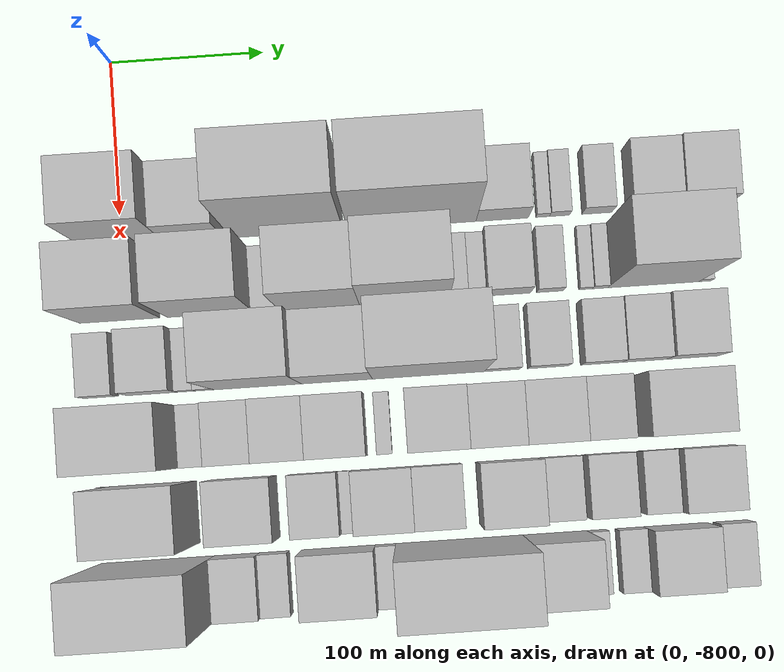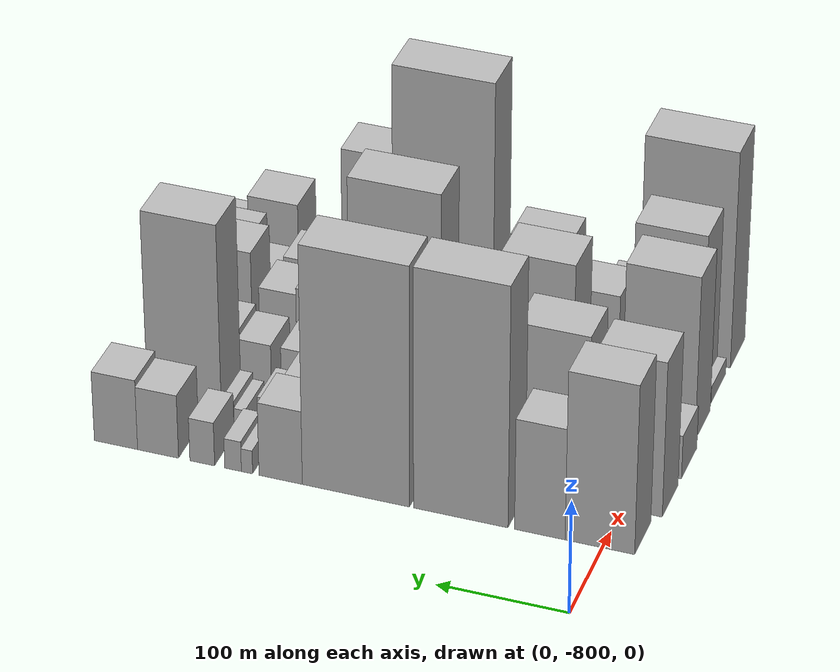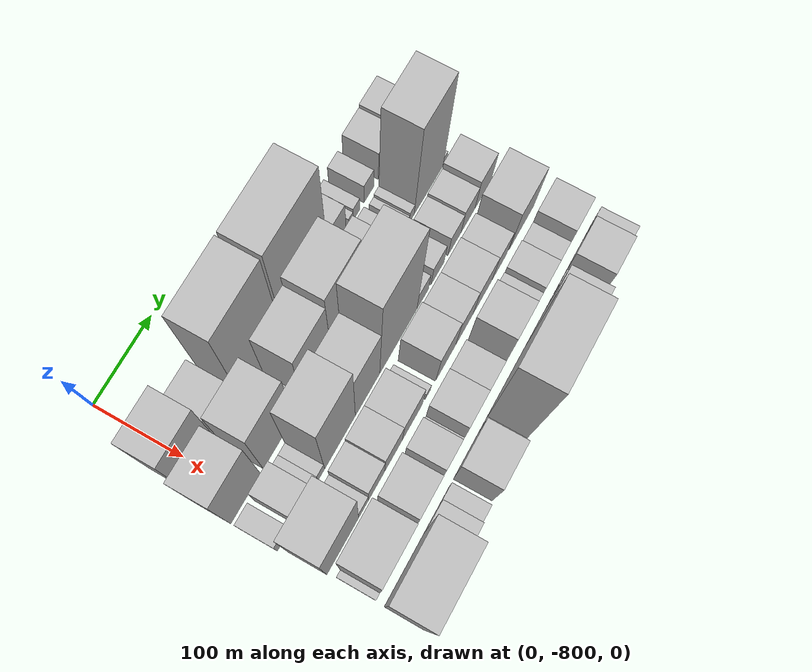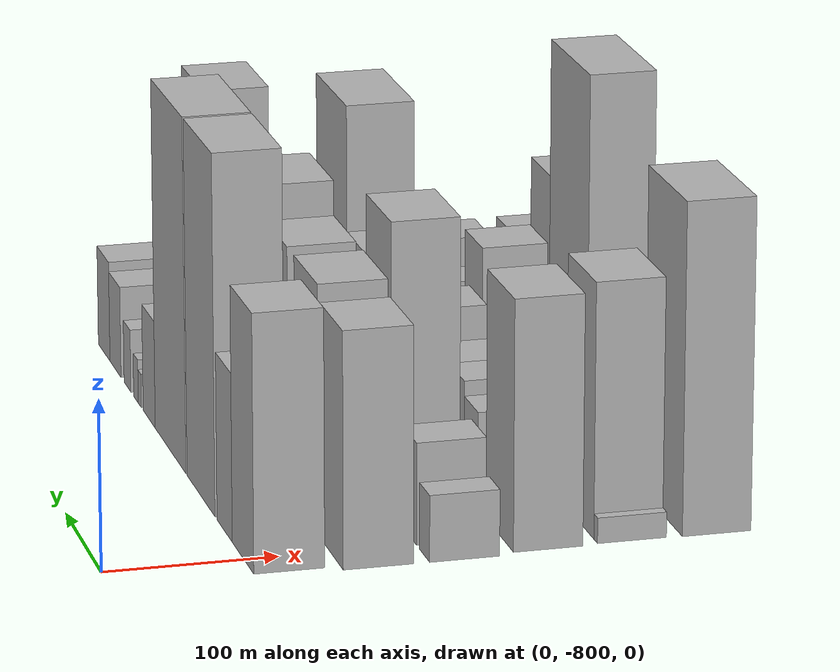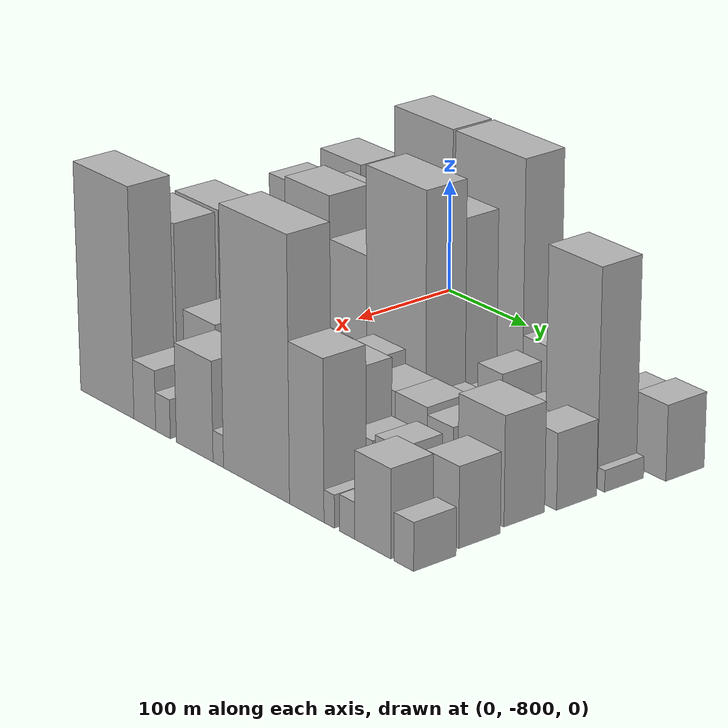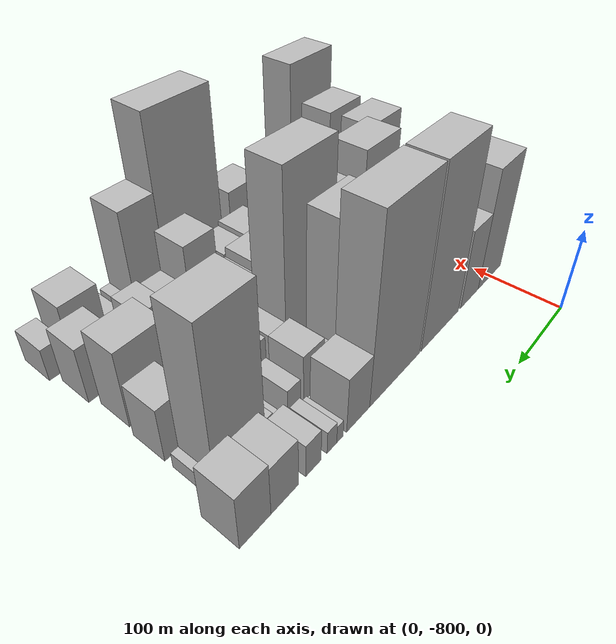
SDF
<sdf version="1.6">
 <world name="default">
  <model name="building_1">
   <static>1</static>
   <pose>100.0000 -797.6599 0 0.000000 0.000000 0.000000</pose>
   <link name="link">
    <pose>0 0 75.00 0 0 0</pose>
    <collision name="collision"><geometry><box><size>40.0000 52.6803 150.0000</size></box></geometry></collision>
    <visual name="visual">
     <cast_shadows>0</cast_shadows>
     <geometry><box><size>40.0000 52.6803 150.0000</size></box></geometry>
     <material>
      <script>
       <uri>model://HANNAS_wall/materials/scripts</uri>
       <uri>model://HANNAS_wall/materials/textures</uri>
       <name>vrc/HANNAS_wall</name>
      </script>
     </material>
    </visual>
   </link>
  </model>
  <model name="building_2">
   <static>1</static>
   <pose>100.0000 -752.0866 0 0.000000 0.000000 0.000000</pose>
   <link name="link">
    <pose>0 0 49.50 0 0 0</pose>
    <collision name="collision"><geometry><box><size>40.0000 38.4662 99.0000</size></box></geometry></collision>
    <visual name="visual">
     <cast_shadows>0</cast_shadows>
     <geometry><box><size>40.0000 38.4662 99.0000</size></box></geometry>
     <material>
      <script>
       <uri>model://HANNAS_wall/materials/scripts</uri>
       <uri>model://HANNAS_wall/materials/textures</uri>
       <name>vrc/HANNAS_wall</name>
      </script>
     </material>
    </visual>
   </link>
  </model>
  <model name="building_3">
   <static>1</static>
   <pose>100.0000 -691.5177 0 0.000000 0.000000 0.000000</pose>
   <link name="link">
    <pose>0 0 106.50 0 0 0</pose>
    <collision name="collision"><geometry><box><size>40.0000 72.6717 213.0000</size></box></geometry></collision>
    <visual name="visual">
     <cast_shadows>0</cast_shadows>
     <geometry><box><size>40.0000 72.6717 213.0000</size></box></geometry>
     <material>
      <script>
       <uri>model://HANNAS_wall/materials/scripts</uri>
       <uri>model://HANNAS_wall/materials/textures</uri>
       <name>vrc/HANNAS_wall</name>
      </script>
     </material>
    </visual>
   </link>
  </model>
  <model name="building_4">
   <static>1</static>
   <pose>100.0000 -610.3841 0 0.000000 0.000000 0.000000</pose>
   <link name="link">
    <pose>0 0 106.50 0 0 0</pose>
    <collision name="collision"><geometry><box><size>40.0000 83.5954 213.0000</size></box></geometry></collision>
    <visual name="visual">
     <cast_shadows>0</cast_shadows>
     <geometry><box><size>40.0000 83.5954 213.0000</size></box></geometry>
     <material>
      <script>
       <uri>model://HANNAS_wall/materials/scripts</uri>
       <uri>model://HANNAS_wall/materials/textures</uri>
       <name>vrc/HANNAS_wall</name>
      </script>
     </material>
    </visual>
   </link>
  </model>
  <model name="building_5">
   <static>1</static>
   <pose>100.0000 -551.5495 0 0.000000 0.000000 0.000000</pose>
   <link name="link">
    <pose>0 0 33.00 0 0 0</pose>
    <collision name="collision"><geometry><box><size>40.0000 34.0738 66.0000</size></box></geometry></collision>
    <visual name="visual">
     <cast_shadows>0</cast_shadows>
     <geometry><box><size>40.0000 34.0738 66.0000</size></box></geometry>
     <material>
      <script>
       <uri>model://HANNAS_wall/materials/scripts</uri>
       <uri>model://HANNAS_wall/materials/textures</uri>
       <name>vrc/HANNAS_wall</name>
      </script>
     </material>
    </visual>
   </link>
  </model>
  <model name="building_6">
   <static>1</static>
   <pose>100.0000 -525.0571 0 0.000000 0.000000 0.000000</pose>
   <link name="link">
    <pose>0 0 10.50 0 0 0</pose>
    <collision name="collision"><geometry><box><size>40.0000 8.9111 21.0000</size></box></geometry></collision>
    <visual name="visual">
     <cast_shadows>0</cast_shadows>
     <geometry><box><size>40.0000 8.9111 21.0000</size></box></geometry>
     <material>
      <script>
       <uri>model://HANNAS_wall/materials/scripts</uri>
       <uri>model://HANNAS_wall/materials/textures</uri>
       <name>vrc/HANNAS_wall</name>
      </script>
     </material>
    </visual>
   </link>
  </model>
  <model name="building_7">
   <static>1</static>
   <pose>100.0000 -514.0190 0 0.000000 0.000000 0.000000</pose>
   <link name="link">
    <pose>0 0 13.50 0 0 0</pose>
    <collision name="collision"><geometry><box><size>40.0000 13.1650 27.0000</size></box></geometry></collision>
    <visual name="visual">
     <cast_shadows>0</cast_shadows>
     <geometry><box><size>40.0000 13.1650 27.0000</size></box></geometry>
     <material>
      <script>
       <uri>model://HANNAS_wall/materials/scripts</uri>
       <uri>model://HANNAS_wall/materials/textures</uri>
       <name>vrc/HANNAS_wall</name>
      </script>
     </material>
    </visual>
   </link>
  </model>
  <model name="building_8">
   <static>1</static>
   <pose>100.0000 -489.5974 0 0.000000 0.000000 0.000000</pose>
   <link name="link">
    <pose>0 0 19.50 0 0 0</pose>
    <collision name="collision"><geometry><box><size>40.0000 19.6783 39.0000</size></box></geometry></collision>
    <visual name="visual">
     <cast_shadows>0</cast_shadows>
     <geometry><box><size>40.0000 19.6783 39.0000</size></box></geometry>
     <material>
      <script>
       <uri>model://HANNAS_wall/materials/scripts</uri>
       <uri>model://HANNAS_wall/materials/textures</uri>
       <name>vrc/HANNAS_wall</name>
      </script>
     </material>
    </visual>
   </link>
  </model>
  <model name="building_9">
   <static>1</static>
   <pose>100.0000 -454.3965 0 0.000000 0.000000 0.000000</pose>
   <link name="link">
    <pose>0 0 28.50 0 0 0</pose>
    <collision name="collision"><geometry><box><size>40.0000 32.7235 57.0000</size></box></geometry></collision>
    <visual name="visual">
     <cast_shadows>0</cast_shadows>
     <geometry><box><size>40.0000 32.7235 57.0000</size></box></geometry>
     <material>
      <script>
       <uri>model://HANNAS_wall/materials/scripts</uri>
       <uri>model://HANNAS_wall/materials/textures</uri>
       <name>vrc/HANNAS_wall</name>
      </script>
     </material>
    </visual>
   </link>
  </model>
  <model name="building_10">
   <static>1</static>
   <pose>100.0000 -420.7034 0 0.000000 0.000000 0.000000</pose>
   <link name="link">
    <pose>0 0 31.50 0 0 0</pose>
    <collision name="collision"><geometry><box><size>40.0000 34.6626 63.0000</size></box></geometry></collision>
    <visual name="visual">
     <cast_shadows>0</cast_shadows>
     <geometry><box><size>40.0000 34.6626 63.0000</size></box></geometry>
     <material>
      <script>
       <uri>model://HANNAS_wall/materials/scripts</uri>
       <uri>model://HANNAS_wall/materials/textures</uri>
       <name>vrc/HANNAS_wall</name>
      </script>
     </material>
    </visual>
   </link>
  </model>
  <model name="building_46">
   <static>1</static>
   <pose>149.0000 -803.9042 0 0.000000 0.000000 0.000000</pose>
   <link name="link">
    <pose>0 0 69.00 0 0 0</pose>
    <collision name="collision"><geometry><box><size>40.0000 52.1916 138.0000</size></box></geometry></collision>
    <visual name="visual">
     <cast_shadows>0</cast_shadows>
     <geometry><box><size>40.0000 52.1916 138.0000</size></box></geometry>
     <material>
      <script>
       <uri>model://HANNAS_wall/materials/scripts</uri>
       <uri>model://HANNAS_wall/materials/textures</uri>
       <name>vrc/HANNAS_wall</name>
      </script>
     </material>
    </visual>
   </link>
  </model>
  <model name="building_47">
   <static>1</static>
   <pose>149.0000 -744.8773 0 0.000000 0.000000 0.000000</pose>
   <link name="link">
    <pose>0 0 73.50 0 0 0</pose>
    <collision name="collision"><geometry><box><size>40.0000 55.8622 147.0000</size></box></geometry></collision>
    <visual name="visual">
     <cast_shadows>0</cast_shadows>
     <geometry><box><size>40.0000 55.8622 147.0000</size></box></geometry>
     <material>
      <script>
       <uri>model://HANNAS_wall/materials/scripts</uri>
       <uri>model://HANNAS_wall/materials/textures</uri>
       <name>vrc/HANNAS_wall</name>
      </script>
     </material>
    </visual>
   </link>
  </model>
  <model name="building_48">
   <static>1</static>
   <pose>149.0000 -708.6220 0 0.000000 0.000000 0.000000</pose>
   <link name="link">
    <pose>0 0 15.00 0 0 0</pose>
    <collision name="collision"><geometry><box><size>40.0000 16.6484 30.0000</size></box></geometry></collision>
    <visual name="visual">
     <cast_shadows>0</cast_shadows>
     <geometry><box><size>40.0000 16.6484 30.0000</size></box></geometry>
     <material>
      <script>
       <uri>model://HANNAS_wall/materials/scripts</uri>
       <uri>model://HANNAS_wall/materials/textures</uri>
       <name>vrc/HANNAS_wall</name>
      </script>
     </material>
    </visual>
   </link>
  </model>
  <model name="building_49">
   <static>1</static>
   <pose>149.0000 -674.1054 0 0.000000 0.000000 0.000000</pose>
   <link name="link">
    <pose>0 0 73.50 0 0 0</pose>
    <collision name="collision"><geometry><box><size>40.0000 52.3848 147.0000</size></box></geometry></collision>
    <visual name="visual">
     <cast_shadows>0</cast_shadows>
     <geometry><box><size>40.0000 52.3848 147.0000</size></box></geometry>
     <material>
      <script>
       <uri>model://HANNAS_wall/materials/scripts</uri>
       <uri>model://HANNAS_wall/materials/textures</uri>
       <name>vrc/HANNAS_wall</name>
      </script>
     </material>
    </visual>
   </link>
  </model>
  <model name="building_50">
   <static>1</static>
   <pose>149.0000 -618.6247 0 0.000000 0.000000 0.000000</pose>
   <link name="link">
    <pose>0 0 84.00 0 0 0</pose>
    <collision name="collision"><geometry><box><size>40.0000 58.5766 168.0000</size></box></geometry></collision>
    <visual name="visual">
     <cast_shadows>0</cast_shadows>
     <geometry><box><size>40.0000 58.5766 168.0000</size></box></geometry>
     <material>
      <script>
       <uri>model://HANNAS_wall/materials/scripts</uri>
       <uri>model://HANNAS_wall/materials/textures</uri>
       <name>vrc/HANNAS_wall</name>
      </script>
     </material>
    </visual>
   </link>
  </model>
  <model name="building_51">
   <static>1</static>
   <pose>149.0000 -583.2388 0 0.000000 0.000000 0.000000</pose>
   <link name="link">
    <pose>0 0 13.50 0 0 0</pose>
    <collision name="collision"><geometry><box><size>40.0000 12.1953 27.0000</size></box></geometry></collision>
    <visual name="visual">
     <cast_shadows>0</cast_shadows>
     <geometry><box><size>40.0000 12.1953 27.0000</size></box></geometry>
     <material>
      <script>
       <uri>model://HANNAS_wall/materials/scripts</uri>
       <uri>model://HANNAS_wall/materials/textures</uri>
       <name>vrc/HANNAS_wall</name>
      </script>
     </material>
    </visual>
   </link>
  </model>
  <model name="building_52">
   <static>1</static>
   <pose>149.0000 -571.4134 0 0.000000 0.000000 0.000000</pose>
   <link name="link">
    <pose>0 0 12.00 0 0 0</pose>
    <collision name="collision"><geometry><box><size>40.0000 11.4554 24.0000</size></box></geometry></collision>
    <visual name="visual">
     <cast_shadows>0</cast_shadows>
     <geometry><box><size>40.0000 11.4554 24.0000</size></box></geometry>
     <material>
      <script>
       <uri>model://HANNAS_wall/materials/scripts</uri>
       <uri>model://HANNAS_wall/materials/textures</uri>
       <name>vrc/HANNAS_wall</name>
      </script>
     </material>
    </visual>
   </link>
  </model>
  <model name="building_53">
   <static>1</static>
   <pose>149.0000 -551.0473 0 0.000000 0.000000 0.000000</pose>
   <link name="link">
    <pose>0 0 28.50 0 0 0</pose>
    <collision name="collision"><geometry><box><size>40.0000 29.2768 57.0000</size></box></geometry></collision>
    <visual name="visual">
     <cast_shadows>0</cast_shadows>
     <geometry><box><size>40.0000 29.2768 57.0000</size></box></geometry>
     <material>
      <script>
       <uri>model://HANNAS_wall/materials/scripts</uri>
       <uri>model://HANNAS_wall/materials/textures</uri>
       <name>vrc/HANNAS_wall</name>
      </script>
     </material>
    </visual>
   </link>
  </model>
  <model name="building_54">
   <static>1</static>
   <pose>149.0000 -523.7265 0 0.000000 0.000000 0.000000</pose>
   <link name="link">
    <pose>0 0 16.50 0 0 0</pose>
    <collision name="collision"><geometry><box><size>40.0000 17.3649 33.0000</size></box></geometry></collision>
    <visual name="visual">
     <cast_shadows>0</cast_shadows>
     <geometry><box><size>40.0000 17.3649 33.0000</size></box></geometry>
     <material>
      <script>
       <uri>model://HANNAS_wall/materials/scripts</uri>
       <uri>model://HANNAS_wall/materials/textures</uri>
       <name>vrc/HANNAS_wall</name>
      </script>
     </material>
    </visual>
   </link>
  </model>
  <model name="building_55">
   <static>1</static>
   <pose>149.0000 -500.5472 0 0.000000 0.000000 0.000000</pose>
   <link name="link">
    <pose>0 0 9.00 0 0 0</pose>
    <collision name="collision"><geometry><box><size>40.0000 8.9937 18.0000</size></box></geometry></collision>
    <visual name="visual">
     <cast_shadows>0</cast_shadows>
     <geometry><box><size>40.0000 8.9937 18.0000</size></box></geometry>
     <material>
      <script>
       <uri>model://HANNAS_wall/materials/scripts</uri>
       <uri>model://HANNAS_wall/materials/textures</uri>
       <name>vrc/HANNAS_wall</name>
      </script>
     </material>
    </visual>
   </link>
  </model>
  <model name="building_56">
   <static>1</static>
   <pose>149.0000 -491.0461 0 0.000000 0.000000 0.000000</pose>
   <link name="link">
    <pose>0 0 12.00 0 0 0</pose>
    <collision name="collision"><geometry><box><size>40.0000 10.0085 24.0000</size></box></geometry></collision>
    <visual name="visual">
     <cast_shadows>0</cast_shadows>
     <geometry><box><size>40.0000 10.0085 24.0000</size></box></geometry>
     <material>
      <script>
       <uri>model://HANNAS_wall/materials/scripts</uri>
       <uri>model://HANNAS_wall/materials/textures</uri>
       <name>vrc/HANNAS_wall</name>
      </script>
     </material>
    </visual>
   </link>
  </model>
  <model name="building_57">
   <static>1</static>
   <pose>149.0000 -456.3584 0 0.000000 0.000000 0.000000</pose>
   <link name="link">
    <pose>0 0 90.00 0 0 0</pose>
    <collision name="collision"><geometry><box><size>40.0000 59.3669 180.0000</size></box></geometry></collision>
    <visual name="visual">
     <cast_shadows>0</cast_shadows>
     <geometry><box><size>40.0000 59.3669 180.0000</size></box></geometry>
     <material>
      <script>
       <uri>model://HANNAS_wall/materials/scripts</uri>
       <uri>model://HANNAS_wall/materials/textures</uri>
       <name>vrc/HANNAS_wall</name>
      </script>
     </material>
    </visual>
   </link>
  </model>
  <model name="building_58">
   <static>1</static>
   <pose>149.0000 -422.5458 0 0.000000 0.000000 0.000000</pose>
   <link name="link">
    <pose>0 0 9.00 0 0 0</pose>
    <collision name="collision"><geometry><box><size>40.0000 8.2582 18.0000</size></box></geometry></collision>
    <visual name="visual">
     <cast_shadows>0</cast_shadows>
     <geometry><box><size>40.0000 8.2582 18.0000</size></box></geometry>
     <material>
      <script>
       <uri>model://HANNAS_wall/materials/scripts</uri>
       <uri>model://HANNAS_wall/materials/textures</uri>
       <name>vrc/HANNAS_wall</name>
      </script>
     </material>
    </visual>
   </link>
  </model>
  <model name="building_96">
   <static>1</static>
   <pose>198.0000 -818.8767 0 0.000000 0.000000 0.000000</pose>
   <link name="link">
    <pose>0 0 19.50 0 0 0</pose>
    <collision name="collision"><geometry><box><size>40.0000 22.2465 39.0000</size></box></geometry></collision>
    <visual name="visual">
     <cast_shadows>0</cast_shadows>
     <geometry><box><size>40.0000 22.2465 39.0000</size></box></geometry>
     <material>
      <script>
       <uri>model://HANNAS_wall/materials/scripts</uri>
       <uri>model://HANNAS_wall/materials/textures</uri>
       <name>vrc/HANNAS_wall</name>
      </script>
     </material>
    </visual>
   </link>
  </model>
  <model name="building_97">
   <static>1</static>
   <pose>198.0000 -785.5520 0 0.000000 0.000000 0.000000</pose>
   <link name="link">
    <pose>0 0 30.00 0 0 0</pose>
    <collision name="collision"><geometry><box><size>40.0000 32.4029 60.0000</size></box></geometry></collision>
    <visual name="visual">
     <cast_shadows>0</cast_shadows>
     <geometry><box><size>40.0000 32.4029 60.0000</size></box></geometry>
     <material>
      <script>
       <uri>model://HANNAS_wall/materials/scripts</uri>
       <uri>model://HANNAS_wall/materials/textures</uri>
       <name>vrc/HANNAS_wall</name>
      </script>
     </material>
    </visual>
   </link>
  </model>
  <model name="building_98">
   <static>1</static>
   <pose>198.0000 -763.4886 0 0.000000 0.000000 0.000000</pose>
   <link name="link">
    <pose>0 0 13.50 0 0 0</pose>
    <collision name="collision"><geometry><box><size>40.0000 11.7238 27.0000</size></box></geometry></collision>
    <visual name="visual">
     <cast_shadows>0</cast_shadows>
     <geometry><box><size>40.0000 11.7238 27.0000</size></box></geometry>
     <material>
      <script>
       <uri>model://HANNAS_wall/materials/scripts</uri>
       <uri>model://HANNAS_wall/materials/textures</uri>
       <name>vrc/HANNAS_wall</name>
      </script>
     </material>
    </visual>
   </link>
  </model>
  <model name="building_99">
   <static>1</static>
   <pose>198.0000 -751.4270 0 0.000000 0.000000 0.000000</pose>
   <link name="link">
    <pose>0 0 13.50 0 0 0</pose>
    <collision name="collision"><geometry><box><size>40.0000 12.3993 27.0000</size></box></geometry></collision>
    <visual name="visual">
     <cast_shadows>0</cast_shadows>
     <geometry><box><size>40.0000 12.3993 27.0000</size></box></geometry>
     <material>
      <script>
       <uri>model://HANNAS_wall/materials/scripts</uri>
       <uri>model://HANNAS_wall/materials/textures</uri>
       <name>vrc/HANNAS_wall</name>
      </script>
     </material>
    </visual>
   </link>
  </model>
  <model name="building_100">
   <static>1</static>
   <pose>198.0000 -716.9110 0 0.000000 0.000000 0.000000</pose>
   <link name="link">
    <pose>0 0 85.50 0 0 0</pose>
    <collision name="collision"><geometry><box><size>40.0000 56.6328 171.0000</size></box></geometry></collision>
    <visual name="visual">
     <cast_shadows>0</cast_shadows>
     <geometry><box><size>40.0000 56.6328 171.0000</size></box></geometry>
     <material>
      <script>
       <uri>model://HANNAS_wall/materials/scripts</uri>
       <uri>model://HANNAS_wall/materials/textures</uri>
       <name>vrc/HANNAS_wall</name>
      </script>
     </material>
    </visual>
   </link>
  </model>
  <model name="building_101">
   <static>1</static>
   <pose>198.0000 -665.5616 0 0.000000 0.000000 0.000000</pose>
   <link name="link">
    <pose>0 0 67.50 0 0 0</pose>
    <collision name="collision"><geometry><box><size>40.0000 46.0659 135.0000</size></box></geometry></collision>
    <visual name="visual">
     <cast_shadows>0</cast_shadows>
     <geometry><box><size>40.0000 46.0659 135.0000</size></box></geometry>
     <material>
      <script>
       <uri>model://HANNAS_wall/materials/scripts</uri>
       <uri>model://HANNAS_wall/materials/textures</uri>
       <name>vrc/HANNAS_wall</name>
      </script>
     </material>
    </visual>
   </link>
  </model>
  <model name="building_102">
   <static>1</static>
   <pose>198.0000 -606.2586 0 0.000000 0.000000 0.000000</pose>
   <link name="link">
    <pose>0 0 105.00 0 0 0</pose>
    <collision name="collision"><geometry><box><size>40.0000 72.5401 210.0000</size></box></geometry></collision>
    <visual name="visual">
     <cast_shadows>0</cast_shadows>
     <geometry><box><size>40.0000 72.5401 210.0000</size></box></geometry>
     <material>
      <script>
       <uri>model://HANNAS_wall/materials/scripts</uri>
       <uri>model://HANNAS_wall/materials/textures</uri>
       <name>vrc/HANNAS_wall</name>
      </script>
     </material>
    </visual>
   </link>
  </model>
  <model name="building_103">
   <static>1</static>
   <pose>198.0000 -558.4354 0 0.000000 0.000000 0.000000</pose>
   <link name="link">
    <pose>0 0 21.00 0 0 0</pose>
    <collision name="collision"><geometry><box><size>40.0000 23.1064 42.0000</size></box></geometry></collision>
    <visual name="visual">
     <cast_shadows>0</cast_shadows>
     <geometry><box><size>40.0000 23.1064 42.0000</size></box></geometry>
     <material>
      <script>
       <uri>model://HANNAS_wall/materials/scripts</uri>
       <uri>model://HANNAS_wall/materials/textures</uri>
       <name>vrc/HANNAS_wall</name>
      </script>
     </material>
    </visual>
   </link>
  </model>
  <model name="building_104">
   <static>1</static>
   <pose>198.0000 -528.6116 0 0.000000 0.000000 0.000000</pose>
   <link name="link">
    <pose>0 0 22.50 0 0 0</pose>
    <collision name="collision"><geometry><box><size>40.0000 26.5411 45.0000</size></box></geometry></collision>
    <visual name="visual">
     <cast_shadows>0</cast_shadows>
     <geometry><box><size>40.0000 26.5411 45.0000</size></box></geometry>
     <material>
      <script>
       <uri>model://HANNAS_wall/materials/scripts</uri>
       <uri>model://HANNAS_wall/materials/textures</uri>
       <name>vrc/HANNAS_wall</name>
      </script>
     </material>
    </visual>
   </link>
  </model>
  <model name="building_105">
   <static>1</static>
   <pose>198.0000 -493.9260 0 0.000000 0.000000 0.000000</pose>
   <link name="link">
    <pose>0 0 22.50 0 0 0</pose>
    <collision name="collision"><geometry><box><size>40.0000 26.8301 45.0000</size></box></geometry></collision>
    <visual name="visual">
     <cast_shadows>0</cast_shadows>
     <geometry><box><size>40.0000 26.8301 45.0000</size></box></geometry>
     <material>
      <script>
       <uri>model://HANNAS_wall/materials/scripts</uri>
       <uri>model://HANNAS_wall/materials/textures</uri>
       <name>vrc/HANNAS_wall</name>
      </script>
     </material>
    </visual>
   </link>
  </model>
  <model name="building_106">
   <static>1</static>
   <pose>198.0000 -466.1054 0 0.000000 0.000000 0.000000</pose>
   <link name="link">
    <pose>0 0 25.50 0 0 0</pose>
    <collision name="collision"><geometry><box><size>40.0000 28.8110 51.0000</size></box></geometry></collision>
    <visual name="visual">
     <cast_shadows>0</cast_shadows>
     <geometry><box><size>40.0000 28.8110 51.0000</size></box></geometry>
     <material>
      <script>
       <uri>model://HANNAS_wall/materials/scripts</uri>
       <uri>model://HANNAS_wall/materials/textures</uri>
       <name>vrc/HANNAS_wall</name>
      </script>
     </material>
    </visual>
   </link>
  </model>
  <model name="building_107">
   <static>1</static>
   <pose>198.0000 -434.6857 0 0.000000 0.000000 0.000000</pose>
   <link name="link">
    <pose>0 0 31.50 0 0 0</pose>
    <collision name="collision"><geometry><box><size>40.0000 34.0284 63.0000</size></box></geometry></collision>
    <visual name="visual">
     <cast_shadows>0</cast_shadows>
     <geometry><box><size>40.0000 34.0284 63.0000</size></box></geometry>
     <material>
      <script>
       <uri>model://HANNAS_wall/materials/scripts</uri>
       <uri>model://HANNAS_wall/materials/textures</uri>
       <name>vrc/HANNAS_wall</name>
      </script>
     </material>
    </visual>
   </link>
  </model>
  <model name="building_142">
   <static>1</static>
   <pose>247.0000 -797.3911 0 0.000000 0.000000 0.000000</pose>
   <link name="link">
    <pose>0 0 73.50 0 0 0</pose>
    <collision name="collision"><geometry><box><size>40.0000 57.2177 147.0000</size></box></geometry></collision>
    <visual name="visual">
     <cast_shadows>0</cast_shadows>
     <geometry><box><size>40.0000 57.2177 147.0000</size></box></geometry>
     <material>
      <script>
       <uri>model://HANNAS_wall/materials/scripts</uri>
       <uri>model://HANNAS_wall/materials/textures</uri>
       <name>vrc/HANNAS_wall</name>
      </script>
     </material>
    </visual>
   </link>
  </model>
  <model name="building_143">
   <static>1</static>
   <pose>247.0000 -759.8720 0 0.000000 0.000000 0.000000</pose>
   <link name="link">
    <pose>0 0 16.50 0 0 0</pose>
    <collision name="collision"><geometry><box><size>40.0000 17.8205 33.0000</size></box></geometry></collision>
    <visual name="visual">
     <cast_shadows>0</cast_shadows>
     <geometry><box><size>40.0000 17.8205 33.0000</size></box></geometry>
     <material>
      <script>
       <uri>model://HANNAS_wall/materials/scripts</uri>
       <uri>model://HANNAS_wall/materials/textures</uri>
       <name>vrc/HANNAS_wall</name>
      </script>
     </material>
    </visual>
   </link>
  </model>
  <model name="building_144">
   <static>1</static>
   <pose>247.0000 -735.8901 0 0.000000 0.000000 0.000000</pose>
   <link name="link">
    <pose>0 0 28.50 0 0 0</pose>
    <collision name="collision"><geometry><box><size>40.0000 30.1433 57.0000</size></box></geometry></collision>
    <visual name="visual">
     <cast_shadows>0</cast_shadows>
     <geometry><box><size>40.0000 30.1433 57.0000</size></box></geometry>
     <material>
      <script>
       <uri>model://HANNAS_wall/materials/scripts</uri>
       <uri>model://HANNAS_wall/materials/textures</uri>
       <name>vrc/HANNAS_wall</name>
      </script>
     </material>
    </visual>
   </link>
  </model>
  <model name="building_145">
   <static>1</static>
   <pose>247.0000 -704.0514 0 0.000000 0.000000 0.000000</pose>
   <link name="link">
    <pose>0 0 33.00 0 0 0</pose>
    <collision name="collision"><geometry><box><size>40.0000 33.5342 66.0000</size></box></geometry></collision>
    <visual name="visual">
     <cast_shadows>0</cast_shadows>
     <geometry><box><size>40.0000 33.5342 66.0000</size></box></geometry>
     <material>
      <script>
       <uri>model://HANNAS_wall/materials/scripts</uri>
       <uri>model://HANNAS_wall/materials/textures</uri>
       <name>vrc/HANNAS_wall</name>
      </script>
     </material>
    </visual>
   </link>
  </model>
  <model name="building_146">
   <static>1</static>
   <pose>247.0000 -668.1047 0 0.000000 0.000000 0.000000</pose>
   <link name="link">
    <pose>0 0 33.00 0 0 0</pose>
    <collision name="collision"><geometry><box><size>40.0000 38.3591 66.0000</size></box></geometry></collision>
    <visual name="visual">
     <cast_shadows>0</cast_shadows>
     <geometry><box><size>40.0000 38.3591 66.0000</size></box></geometry>
     <material>
      <script>
       <uri>model://HANNAS_wall/materials/scripts</uri>
       <uri>model://HANNAS_wall/materials/textures</uri>
       <name>vrc/HANNAS_wall</name>
      </script>
     </material>
    </visual>
   </link>
  </model>
  <model name="building_147">
   <static>1</static>
   <pose>247.0000 -637.8984 0 0.000000 0.000000 0.000000</pose>
   <link name="link">
    <pose>0 0 10.50 0 0 0</pose>
    <collision name="collision"><geometry><box><size>40.0000 10.0536 21.0000</size></box></geometry></collision>
    <visual name="visual">
     <cast_shadows>0</cast_shadows>
     <geometry><box><size>40.0000 10.0536 21.0000</size></box></geometry>
     <material>
      <script>
       <uri>model://HANNAS_wall/materials/scripts</uri>
       <uri>model://HANNAS_wall/materials/textures</uri>
       <name>vrc/HANNAS_wall</name>
      </script>
     </material>
    </visual>
   </link>
  </model>
  <model name="building_148">
   <static>1</static>
   <pose>247.0000 -603.3702 0 0.000000 0.000000 0.000000</pose>
   <link name="link">
    <pose>0 0 39.00 0 0 0</pose>
    <collision name="collision"><geometry><box><size>40.0000 39.0027 78.0000</size></box></geometry></collision>
    <visual name="visual">
     <cast_shadows>0</cast_shadows>
     <geometry><box><size>40.0000 39.0027 78.0000</size></box></geometry>
     <material>
      <script>
       <uri>model://HANNAS_wall/materials/scripts</uri>
       <uri>model://HANNAS_wall/materials/textures</uri>
       <name>vrc/HANNAS_wall</name>
      </script>
     </material>
    </visual>
   </link>
  </model>
  <model name="building_149">
   <static>1</static>
   <pose>247.0000 -565.7525 0 0.000000 0.000000 0.000000</pose>
   <link name="link">
    <pose>0 0 33.00 0 0 0</pose>
    <collision name="collision"><geometry><box><size>40.0000 36.2328 66.0000</size></box></geometry></collision>
    <visual name="visual">
     <cast_shadows>0</cast_shadows>
     <geometry><box><size>40.0000 36.2328 66.0000</size></box></geometry>
     <material>
      <script>
       <uri>model://HANNAS_wall/materials/scripts</uri>
       <uri>model://HANNAS_wall/materials/textures</uri>
       <name>vrc/HANNAS_wall</name>
      </script>
     </material>
    </visual>
   </link>
  </model>
  <model name="building_150">
   <static>1</static>
   <pose>247.0000 -528.5596 0 0.000000 0.000000 0.000000</pose>
   <link name="link">
    <pose>0 0 33.00 0 0 0</pose>
    <collision name="collision"><geometry><box><size>40.0000 38.1531 66.0000</size></box></geometry></collision>
    <visual name="visual">
     <cast_shadows>0</cast_shadows>
     <geometry><box><size>40.0000 38.1531 66.0000</size></box></geometry>
     <material>
      <script>
       <uri>model://HANNAS_wall/materials/scripts</uri>
       <uri>model://HANNAS_wall/materials/textures</uri>
       <name>vrc/HANNAS_wall</name>
      </script>
     </material>
    </visual>
   </link>
  </model>
  <model name="building_151">
   <static>1</static>
   <pose>247.0000 -494.4373 0 0.000000 0.000000 0.000000</pose>
   <link name="link">
    <pose>0 0 30.00 0 0 0</pose>
    <collision name="collision"><geometry><box><size>40.0000 30.0913 60.0000</size></box></geometry></collision>
    <visual name="visual">
     <cast_shadows>0</cast_shadows>
     <geometry><box><size>40.0000 30.0913 60.0000</size></box></geometry>
     <material>
      <script>
       <uri>model://HANNAS_wall/materials/scripts</uri>
       <uri>model://HANNAS_wall/materials/textures</uri>
       <name>vrc/HANNAS_wall</name>
      </script>
     </material>
    </visual>
   </link>
  </model>
  <model name="building_152">
   <static>1</static>
   <pose>247.0000 -447.1630 0 0.000000 0.000000 0.000000</pose>
   <link name="link">
    <pose>0 0 45.00 0 0 0</pose>
    <collision name="collision"><geometry><box><size>40.0000 52.4574 90.0000</size></box></geometry></collision>
    <visual name="visual">
     <cast_shadows>0</cast_shadows>
     <geometry><box><size>40.0000 52.4574 90.0000</size></box></geometry>
     <material>
      <script>
       <uri>model://HANNAS_wall/materials/scripts</uri>
       <uri>model://HANNAS_wall/materials/textures</uri>
       <name>vrc/HANNAS_wall</name>
      </script>
     </material>
    </visual>
   </link>
  </model>
  <model name="building_189">
   <static>1</static>
   <pose>296.0000 -820.3848 0 0.000000 0.000000 0.000000</pose>
   <link name="link">
    <pose>0 0 7.50 0 0 0</pose>
    <collision name="collision"><geometry><box><size>40.0000 7.2305 15.0000</size></box></geometry></collision>
    <visual name="visual">
     <cast_shadows>0</cast_shadows>
     <geometry><box><size>40.0000 7.2305 15.0000</size></box></geometry>
     <material>
      <script>
       <uri>model://HANNAS_wall/materials/scripts</uri>
       <uri>model://HANNAS_wall/materials/textures</uri>
       <name>vrc/HANNAS_wall</name>
      </script>
     </material>
    </visual>
   </link>
  </model>
  <model name="building_190">
   <static>1</static>
   <pose>296.0000 -788.7448 0 0.000000 0.000000 0.000000</pose>
   <link name="link">
    <pose>0 0 75.00 0 0 0</pose>
    <collision name="collision"><geometry><box><size>40.0000 56.0495 150.0000</size></box></geometry></collision>
    <visual name="visual">
     <cast_shadows>0</cast_shadows>
     <geometry><box><size>40.0000 56.0495 150.0000</size></box></geometry>
     <material>
      <script>
       <uri>model://HANNAS_wall/materials/scripts</uri>
       <uri>model://HANNAS_wall/materials/textures</uri>
       <name>vrc/HANNAS_wall</name>
      </script>
     </material>
    </visual>
   </link>
  </model>
  <model name="building_191">
   <static>1</static>
   <pose>296.0000 -729.7704 0 0.000000 0.000000 0.000000</pose>
   <link name="link">
    <pose>0 0 40.50 0 0 0</pose>
    <collision name="collision"><geometry><box><size>40.0000 41.8994 81.0000</size></box></geometry></collision>
    <visual name="visual">
     <cast_shadows>0</cast_shadows>
     <geometry><box><size>40.0000 41.8994 81.0000</size></box></geometry>
     <material>
      <script>
       <uri>model://HANNAS_wall/materials/scripts</uri>
       <uri>model://HANNAS_wall/materials/textures</uri>
       <name>vrc/HANNAS_wall</name>
      </script>
     </material>
    </visual>
   </link>
  </model>
  <model name="building_192">
   <static>1</static>
   <pose>296.0000 -684.2474 0 0.000000 0.000000 0.000000</pose>
   <link name="link">
    <pose>0 0 27.00 0 0 0</pose>
    <collision name="collision"><geometry><box><size>40.0000 31.1465 54.0000</size></box></geometry></collision>
    <visual name="visual">
     <cast_shadows>0</cast_shadows>
     <geometry><box><size>40.0000 31.1465 54.0000</size></box></geometry>
     <material>
      <script>
       <uri>model://HANNAS_wall/materials/scripts</uri>
       <uri>model://HANNAS_wall/materials/textures</uri>
       <name>vrc/HANNAS_wall</name>
      </script>
     </material>
    </visual>
   </link>
  </model>
  <model name="building_193">
   <static>1</static>
   <pose>296.0000 -664.2792 0 0.000000 0.000000 0.000000</pose>
   <link name="link">
    <pose>0 0 9.00 0 0 0</pose>
    <collision name="collision"><geometry><box><size>40.0000 8.7898 18.0000</size></box></geometry></collision>
    <visual name="visual">
     <cast_shadows>0</cast_shadows>
     <geometry><box><size>40.0000 8.7898 18.0000</size></box></geometry>
     <material>
      <script>
       <uri>model://HANNAS_wall/materials/scripts</uri>
       <uri>model://HANNAS_wall/materials/textures</uri>
       <name>vrc/HANNAS_wall</name>
      </script>
     </material>
    </visual>
   </link>
  </model>
  <model name="building_194">
   <static>1</static>
   <pose>296.0000 -640.7695 0 0.000000 0.000000 0.000000</pose>
   <link name="link">
    <pose>0 0 33.00 0 0 0</pose>
    <collision name="collision"><geometry><box><size>40.0000 38.2295 66.0000</size></box></geometry></collision>
    <visual name="visual">
     <cast_shadows>0</cast_shadows>
     <geometry><box><size>40.0000 38.2295 66.0000</size></box></geometry>
     <material>
      <script>
       <uri>model://HANNAS_wall/materials/scripts</uri>
       <uri>model://HANNAS_wall/materials/textures</uri>
       <name>vrc/HANNAS_wall</name>
      </script>
     </material>
    </visual>
   </link>
  </model>
  <model name="building_195">
   <static>1</static>
   <pose>296.0000 -605.6557 0 0.000000 0.000000 0.000000</pose>
   <link name="link">
    <pose>0 0 30.00 0 0 0</pose>
    <collision name="collision"><geometry><box><size>40.0000 31.9981 60.0000</size></box></geometry></collision>
    <visual name="visual">
     <cast_shadows>0</cast_shadows>
     <geometry><box><size>40.0000 31.9981 60.0000</size></box></geometry>
     <material>
      <script>
       <uri>model://HANNAS_wall/materials/scripts</uri>
       <uri>model://HANNAS_wall/materials/textures</uri>
       <name>vrc/HANNAS_wall</name>
      </script>
     </material>
    </visual>
   </link>
  </model>
  <model name="building_196">
   <static>1</static>
   <pose>296.0000 -560.0523 0 0.000000 0.000000 0.000000</pose>
   <link name="link">
    <pose>0 0 49.50 0 0 0</pose>
    <collision name="collision"><geometry><box><size>40.0000 39.2089 99.0000</size></box></geometry></collision>
    <visual name="visual">
     <cast_shadows>0</cast_shadows>
     <geometry><box><size>40.0000 39.2089 99.0000</size></box></geometry>
     <material>
      <script>
       <uri>model://HANNAS_wall/materials/scripts</uri>
       <uri>model://HANNAS_wall/materials/textures</uri>
       <name>vrc/HANNAS_wall</name>
      </script>
     </material>
    </visual>
   </link>
  </model>
  <model name="building_197">
   <static>1</static>
   <pose>296.0000 -527.2291 0 0.000000 0.000000 0.000000</pose>
   <link name="link">
    <pose>0 0 25.50 0 0 0</pose>
    <collision name="collision"><geometry><box><size>40.0000 26.4375 51.0000</size></box></geometry></collision>
    <visual name="visual">
     <cast_shadows>0</cast_shadows>
     <geometry><box><size>40.0000 26.4375 51.0000</size></box></geometry>
     <material>
      <script>
       <uri>model://HANNAS_wall/materials/scripts</uri>
       <uri>model://HANNAS_wall/materials/textures</uri>
       <name>vrc/HANNAS_wall</name>
      </script>
     </material>
    </visual>
   </link>
  </model>
  <model name="building_198">
   <static>1</static>
   <pose>296.0000 -495.9477 0 0.000000 0.000000 0.000000</pose>
   <link name="link">
    <pose>0 0 28.50 0 0 0</pose>
    <collision name="collision"><geometry><box><size>40.0000 30.1253 57.0000</size></box></geometry></collision>
    <visual name="visual">
     <cast_shadows>0</cast_shadows>
     <geometry><box><size>40.0000 30.1253 57.0000</size></box></geometry>
     <material>
      <script>
       <uri>model://HANNAS_wall/materials/scripts</uri>
       <uri>model://HANNAS_wall/materials/textures</uri>
       <name>vrc/HANNAS_wall</name>
      </script>
     </material>
    </visual>
   </link>
  </model>
  <model name="building_199">
   <static>1</static>
   <pose>296.0000 -463.6080 0 0.000000 0.000000 0.000000</pose>
   <link name="link">
    <pose>0 0 19.50 0 0 0</pose>
    <collision name="collision"><geometry><box><size>40.0000 22.5540 39.0000</size></box></geometry></collision>
    <visual name="visual">
     <cast_shadows>0</cast_shadows>
     <geometry><box><size>40.0000 22.5540 39.0000</size></box></geometry>
     <material>
      <script>
       <uri>model://HANNAS_wall/materials/scripts</uri>
       <uri>model://HANNAS_wall/materials/textures</uri>
       <name>vrc/HANNAS_wall</name>
      </script>
     </material>
    </visual>
   </link>
  </model>
  <model name="building_200">
   <static>1</static>
   <pose>296.0000 -433.4393 0 0.000000 0.000000 0.000000</pose>
   <link name="link">
    <pose>0 0 33.00 0 0 0</pose>
    <collision name="collision"><geometry><box><size>40.0000 37.7834 66.0000</size></box></geometry></collision>
    <visual name="visual">
     <cast_shadows>0</cast_shadows>
     <geometry><box><size>40.0000 37.7834 66.0000</size></box></geometry>
     <material>
      <script>
       <uri>model://HANNAS_wall/materials/scripts</uri>
       <uri>model://HANNAS_wall/materials/textures</uri>
       <name>vrc/HANNAS_wall</name>
      </script>
     </material>
    </visual>
   </link>
  </model>
  <model name="building_235">
   <static>1</static>
   <pose>345.0000 -788.4602 0 0.000000 0.000000 0.000000</pose>
   <link name="link">
    <pose>0 0 97.50 0 0 0</pose>
    <collision name="collision"><geometry><box><size>40.0000 73.0796 195.0000</size></box></geometry></collision>
    <visual name="visual">
     <cast_shadows>0</cast_shadows>
     <geometry><box><size>40.0000 73.0796 195.0000</size></box></geometry>
     <material>
      <script>
       <uri>model://HANNAS_wall/materials/scripts</uri>
       <uri>model://HANNAS_wall/materials/textures</uri>
       <name>vrc/HANNAS_wall</name>
      </script>
     </material>
    </visual>
   </link>
  </model>
  <model name="building_236">
   <static>1</static>
   <pose>345.0000 -737.3280 0 0.000000 0.000000 0.000000</pose>
   <link name="link">
    <pose>0 0 25.50 0 0 0</pose>
    <collision name="collision"><geometry><box><size>40.0000 29.1847 51.0000</size></box></geometry></collision>
    <visual name="visual">
     <cast_shadows>0</cast_shadows>
     <geometry><box><size>40.0000 29.1847 51.0000</size></box></geometry>
     <material>
      <script>
       <uri>model://HANNAS_wall/materials/scripts</uri>
       <uri>model://HANNAS_wall/materials/textures</uri>
       <name>vrc/HANNAS_wall</name>
      </script>
     </material>
    </visual>
   </link>
  </model>
  <model name="building_237">
   <static>1</static>
   <pose>345.0000 -713.1170 0 0.000000 0.000000 0.000000</pose>
   <link name="link">
    <pose>0 0 16.50 0 0 0</pose>
    <collision name="collision"><geometry><box><size>40.0000 19.2373 33.0000</size></box></geometry></collision>
    <visual name="visual">
     <cast_shadows>0</cast_shadows>
     <geometry><box><size>40.0000 19.2373 33.0000</size></box></geometry>
     <material>
      <script>
       <uri>model://HANNAS_wall/materials/scripts</uri>
       <uri>model://HANNAS_wall/materials/textures</uri>
       <name>vrc/HANNAS_wall</name>
      </script>
     </material>
    </visual>
   </link>
  </model>
  <model name="building_238">
   <static>1</static>
   <pose>345.0000 -671.7078 0 0.000000 0.000000 0.000000</pose>
   <link name="link">
    <pose>0 0 42.00 0 0 0</pose>
    <collision name="collision"><geometry><box><size>40.0000 47.5811 84.0000</size></box></geometry></collision>
    <visual name="visual">
     <cast_shadows>0</cast_shadows>
     <geometry><box><size>40.0000 47.5811 84.0000</size></box></geometry>
     <material>
      <script>
       <uri>model://HANNAS_wall/materials/scripts</uri>
       <uri>model://HANNAS_wall/materials/textures</uri>
       <name>vrc/HANNAS_wall</name>
      </script>
     </material>
    </visual>
   </link>
  </model>
  <model name="building_239">
   <static>1</static>
   <pose>345.0000 -641.2636 0 0.000000 0.000000 0.000000</pose>
   <link name="link">
    <pose>0 0 13.50 0 0 0</pose>
    <collision name="collision"><geometry><box><size>40.0000 13.3074 27.0000</size></box></geometry></collision>
    <visual name="visual">
     <cast_shadows>0</cast_shadows>
     <geometry><box><size>40.0000 13.3074 27.0000</size></box></geometry>
     <material>
      <script>
       <uri>model://HANNAS_wall/materials/scripts</uri>
       <uri>model://HANNAS_wall/materials/textures</uri>
       <name>vrc/HANNAS_wall</name>
      </script>
     </material>
    </visual>
   </link>
  </model>
  <model name="building_240">
   <static>1</static>
   <pose>345.0000 -593.5106 0 0.000000 0.000000 0.000000</pose>
   <link name="link">
    <pose>0 0 108.00 0 0 0</pose>
    <collision name="collision"><geometry><box><size>40.0000 82.1985 216.0000</size></box></geometry></collision>
    <visual name="visual">
     <cast_shadows>0</cast_shadows>
     <geometry><box><size>40.0000 82.1985 216.0000</size></box></geometry>
     <material>
      <script>
       <uri>model://HANNAS_wall/materials/scripts</uri>
       <uri>model://HANNAS_wall/materials/textures</uri>
       <name>vrc/HANNAS_wall</name>
      </script>
     </material>
    </visual>
   </link>
  </model>
  <model name="building_241">
   <static>1</static>
   <pose>345.0000 -531.6108 0 0.000000 0.000000 0.000000</pose>
   <link name="link">
    <pose>0 0 66.00 0 0 0</pose>
    <collision name="collision"><geometry><box><size>40.0000 41.6011 132.0000</size></box></geometry></collision>
    <visual name="visual">
     <cast_shadows>0</cast_shadows>
     <geometry><box><size>40.0000 41.6011 132.0000</size></box></geometry>
     <material>
      <script>
       <uri>model://HANNAS_wall/materials/scripts</uri>
       <uri>model://HANNAS_wall/materials/textures</uri>
       <name>vrc/HANNAS_wall</name>
      </script>
     </material>
    </visual>
   </link>
  </model>
  <model name="building_242">
   <static>1</static>
   <pose>345.0000 -504.6292 0 0.000000 0.000000 0.000000</pose>
   <link name="link">
    <pose>0 0 13.50 0 0 0</pose>
    <collision name="collision"><geometry><box><size>40.0000 12.3621 27.0000</size></box></geometry></collision>
    <visual name="visual">
     <cast_shadows>0</cast_shadows>
     <geometry><box><size>40.0000 12.3621 27.0000</size></box></geometry>
     <material>
      <script>
       <uri>model://HANNAS_wall/materials/scripts</uri>
       <uri>model://HANNAS_wall/materials/textures</uri>
       <name>vrc/HANNAS_wall</name>
      </script>
     </material>
    </visual>
   </link>
  </model>
  <model name="building_243">
   <static>1</static>
   <pose>345.0000 -483.4529 0 0.000000 0.000000 0.000000</pose>
   <link name="link">
    <pose>0 0 15.00 0 0 0</pose>
    <collision name="collision"><geometry><box><size>40.0000 17.9906 30.0000</size></box></geometry></collision>
    <visual name="visual">
     <cast_shadows>0</cast_shadows>
     <geometry><box><size>40.0000 17.9906 30.0000</size></box></geometry>
     <material>
      <script>
       <uri>model://HANNAS_wall/materials/scripts</uri>
       <uri>model://HANNAS_wall/materials/textures</uri>
       <name>vrc/HANNAS_wall</name>
      </script>
     </material>
    </visual>
   </link>
  </model>
  <model name="building_244">
   <static>1</static>
   <pose>345.0000 -453.7145 0 0.000000 0.000000 0.000000</pose>
   <link name="link">
    <pose>0 0 36.00 0 0 0</pose>
    <collision name="collision"><geometry><box><size>40.0000 41.4862 72.0000</size></box></geometry></collision>
    <visual name="visual">
     <cast_shadows>0</cast_shadows>
     <geometry><box><size>40.0000 41.4862 72.0000</size></box></geometry>
     <material>
      <script>
       <uri>model://HANNAS_wall/materials/scripts</uri>
       <uri>model://HANNAS_wall/materials/textures</uri>
       <name>vrc/HANNAS_wall</name>
      </script>
     </material>
    </visual>
   </link>
  </model>
  <model name="building_245">
   <static>1</static>
   <pose>345.0000 -417.9207 0 0.000000 0.000000 0.000000</pose>
   <link name="link">
    <pose>0 0 19.50 0 0 0</pose>
    <collision name="collision"><geometry><box><size>40.0000 22.1014 39.0000</size></box></geometry></collision>
    <visual name="visual">
     <cast_shadows>0</cast_shadows>
     <geometry><box><size>40.0000 22.1014 39.0000</size></box></geometry>
     <material>
      <script>
       <uri>model://HANNAS_wall/materials/scripts</uri>
       <uri>model://HANNAS_wall/materials/textures</uri>
       <name>vrc/HANNAS_wall</name>
      </script>
     </material>
    </visual>
   </link>
  </model>
 </world>
</sdf>
